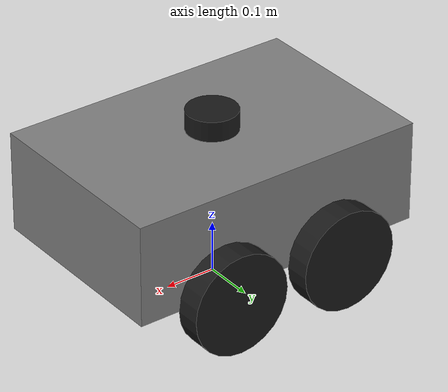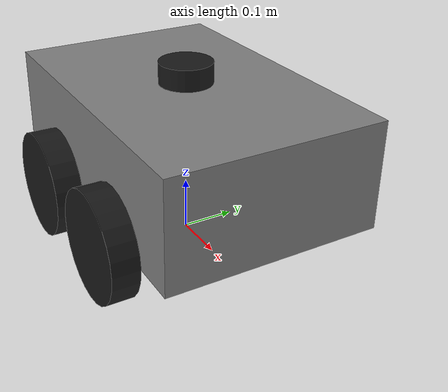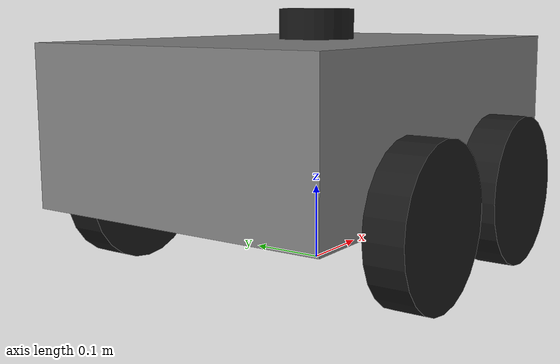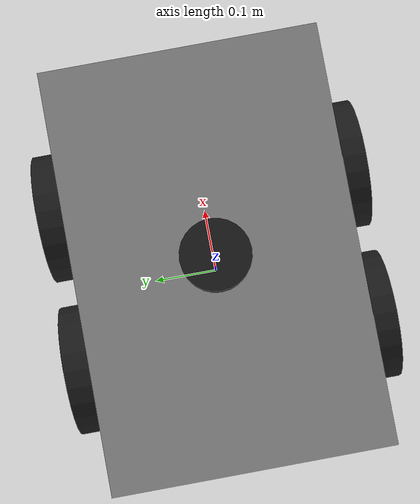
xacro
<?xml version="1.0"?>
<robot xmlns:xacro="http://www.ros.org/wiki/xacro" name="warehouse_robot">

  <!-- Properties -->
  <xacro:property name="body_length"  value="0.6"/>
  <xacro:property name="body_width"   value="0.4"/>
  <xacro:property name="body_height"  value="0.2"/>
  <xacro:property name="wheel_radius" value="0.1"/>
  <xacro:property name="wheel_length" value="0.05"/>
  <xacro:property name="wheel_x"      value="0.12"/>   <!-- short wheelbase: easier turning -->
  <xacro:property name="wheel_y"      value="0.225"/>  <!-- half of separation 0.45 -->

  <!-- Materials -->
  <material name="grey"><color rgba="0.5 0.5 0.5 1"/></material>
  <material name="blue"><color rgba="0.1 0.1 0.8 1"/></material>
  <material name="black"><color rgba="0.1 0.1 0.1 1"/></material>

  <!-- BASE LINK -->
  <link name="base_link"/>

  <!-- CHASSIS -->
  <joint name="chassis_joint" type="fixed">
    <parent link="base_link"/>
    <child link="chassis"/>
    <origin xyz="0 0 0.2"/>
  </joint>

  <link name="chassis">
    <visual>
      <origin xyz="0 0 0"/>
      <geometry><box size="${body_length} ${body_width} ${body_height}"/></geometry>
      <material name="grey"/>
    </visual>
    <collision>
      <origin xyz="0 0 0"/>
      <geometry><box size="${body_length} ${body_width} ${body_height}"/></geometry>
    </collision>
    <inertial>
      <mass value="5.0"/>
      <inertia
         ixx="${1/12 * 5.0*(body_width*body_width+body_height*body_height)}"
         ixy="0" ixz="0"
         iyy="${1/12 * 5.0*(body_length*body_length+body_height*body_height)}"
         iyz="0"
         izz="${1/12 * 5.0*(body_length*body_length+body_width*body_width)}"/>
    </inertial>
  </link>

  <!-- WHEEL MACRO — skid-steer tuned (low lateral friction) -->
  <xacro:macro name="wheel" params="name x y">
    <joint name="${name}_joint" type="continuous">
      <parent link="chassis"/>
      <child link="${name}_link"/>
      <origin xyz="${x} ${y} -${wheel_radius}" rpy="0 0 0"/>
      <axis xyz="0 1 0"/>
    </joint>
    <link name="${name}_link">
      <visual>
        <origin xyz="0 0 0" rpy="1.5708 0 0"/>
        <geometry><cylinder radius="${wheel_radius}" length="${wheel_length}"/></geometry>
        <material name="black"/>
      </visual>
      <collision>
        <origin xyz="0 0 0" rpy="1.5708 0 0"/>
        <geometry><cylinder radius="${wheel_radius}" length="${wheel_length}"/></geometry>
      </collision>
      <inertial>
        <mass value="0.5"/>
        <inertia
           ixx="${(1/12)*0.5*(3*wheel_radius*wheel_radius+wheel_length*wheel_length)}"
           ixy="0" ixz="0"
           iyy="${(1/12)*0.5*(3*wheel_radius*wheel_radius+wheel_length*wheel_length)}"
           iyz="0"
           izz="${(1/2)*0.5*(wheel_radius*wheel_radius)}"/>
      </inertial>
    </link>
    <!-- KEY: mu1 high (drive grip), mu2 ZERO (free sideways slip for skid-steer) -->
    <gazebo reference="${name}_link">
      <mu1>1.0</mu1>
      <mu2>0.0</mu2>
      <kp>1000000.0</kp>
      <kd>100.0</kd>
      <fdir1>1 0 0</fdir1>
    </gazebo>
  </xacro:macro>

  <!-- Four driven wheels at the corners -->
  <xacro:wheel name="left_front_wheel"  x="${wheel_x}"  y="${wheel_y}"/>
  <xacro:wheel name="left_back_wheel"   x="-${wheel_x}" y="${wheel_y}"/>
  <xacro:wheel name="right_front_wheel" x="${wheel_x}"  y="-${wheel_y}"/>
  <xacro:wheel name="right_back_wheel"  x="-${wheel_x}" y="-${wheel_y}"/>

  <!-- LIDAR -->
  <joint name="lidar_joint" type="fixed">
    <parent link="chassis"/>
    <child link="lidar_link"/>
    <origin xyz="0 0 0.12"/>
  </joint>

  <link name="lidar_link">
    <visual>
      <geometry><cylinder radius="0.05" length="0.04"/></geometry>
      <material name="black"/>
    </visual>
    <collision>
      <geometry><cylinder radius="0.05" length="0.04"/></geometry>
    </collision>
    <inertial>
      <mass value="0.1"/>
      <inertia ixx="0.001" ixy="0" ixz="0" iyy="0.001" iyz="0" izz="0.001"/>
    </inertial>
  </link>

  <gazebo reference="lidar_link">
    <sensor name="lidar_sensor" type="gpu_lidar">
      <topic>scan</topic>
      <update_rate>10</update_rate>
      <always_on>true</always_on>
      <visualize>true</visualize>
      <lidar>
        <scan>
          <horizontal>
            <samples>360</samples>
            <resolution>1</resolution>
            <min_angle>-3.14159</min_angle>
            <max_angle>3.14159</max_angle>
          </horizontal>
        </scan>
        <range>
          <min>0.15</min>
          <max>8.0</max>
          <resolution>0.02</resolution>
        </range>
      </lidar>
      <gz_frame_id>lidar_link</gz_frame_id>
    </sensor>
  </gazebo>
  <!-- IMU SENSOR -->
  <gazebo reference="chassis">
    <sensor name="imu_sensor" type="imu">
      <topic>imu</topic>
      <update_rate>50</update_rate>
      <always_on>true</always_on>
      <gz_frame_id>chassis</gz_frame_id>
    </sensor>
  </gazebo>

  <!-- IMU SYSTEM PLUGIN — required for IMU to publish -->
  <gazebo>
    <plugin filename="ignition-gazebo-imu-system"
            name="ignition::gazebo::systems::Imu">
    </plugin>
  </gazebo>

  <!-- DIFF DRIVE — all 4 wheels (2 left, 2 right) -->
  <gazebo>
    <plugin filename="ignition-gazebo-diff-drive-system"
            name="ignition::gazebo::systems::DiffDrive">
       <left_joint>left_front_wheel_joint</left_joint>
       <left_joint>left_back_wheel_joint</left_joint>
       <right_joint>right_front_wheel_joint</right_joint>
       <right_joint>right_back_wheel_joint</right_joint>
       <wheel_separation>0.45</wheel_separation>
       <wheel_radius>${wheel_radius}</wheel_radius>
       <topic>/cmd_vel</topic>
       <odom_topic>/odom</odom_topic>
       <frame_id>odom</frame_id>
       <child_frame_id>base_link</child_frame_id>
       <publish_odom>true</publish_odom>
       <publish_odom_tf>false</publish_odom_tf>
    </plugin>
  </gazebo>

  <!-- JOINT STATE PUBLISHER — makes Gazebo publish wheel joint states -->
  <gazebo>
    <plugin filename="ignition-gazebo-joint-state-publisher-system"
            name="ignition::gazebo::systems::JointStatePublisher">
    </plugin>
  </gazebo>

  <!-- SENSORS SYSTEM PLUGIN -->
  <gazebo>
    <plugin filename="ignition-gazebo-sensors-system"
            name="ignition::gazebo::systems::Sensors">
       <render_engine>ogre2</render_engine>
    </plugin>
  </gazebo>

</robot>
